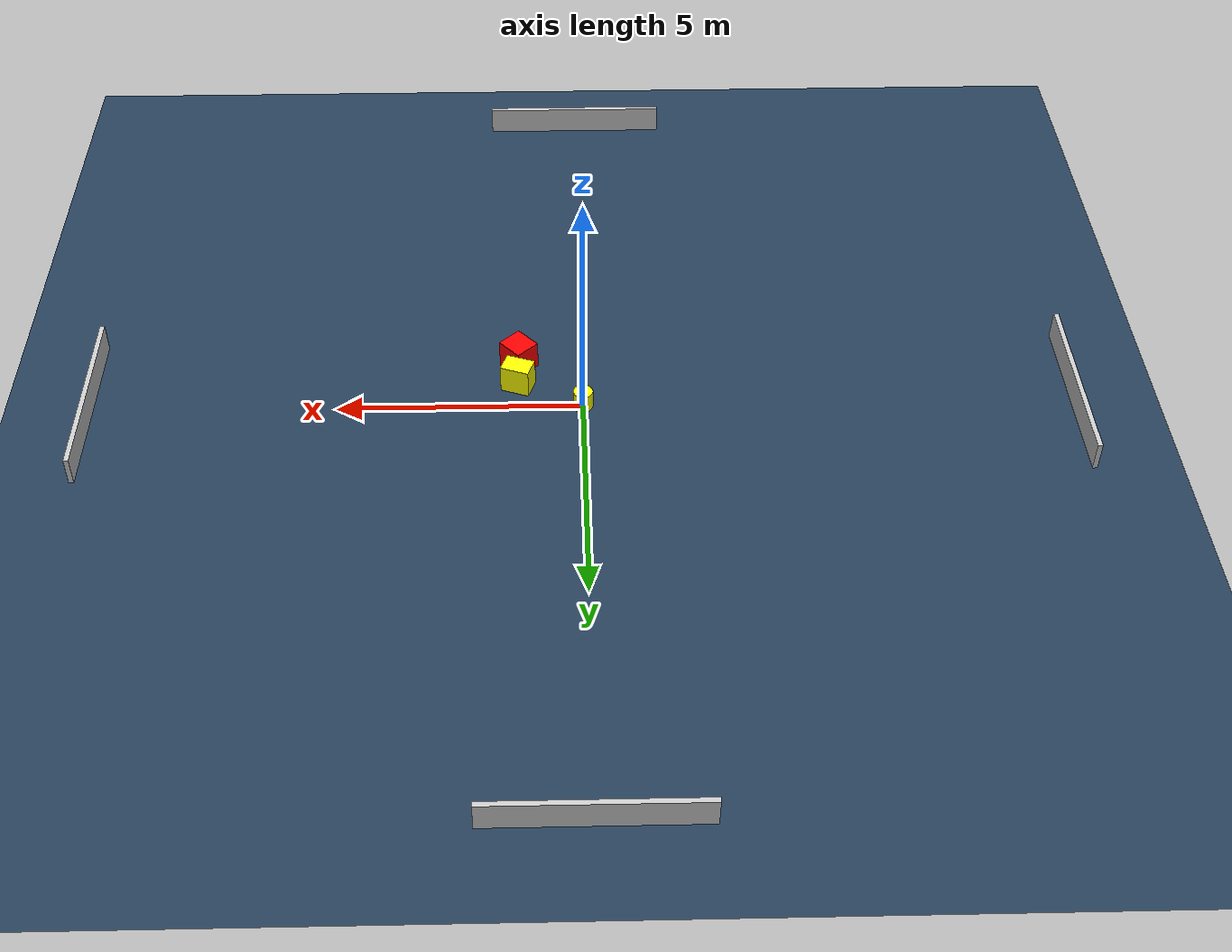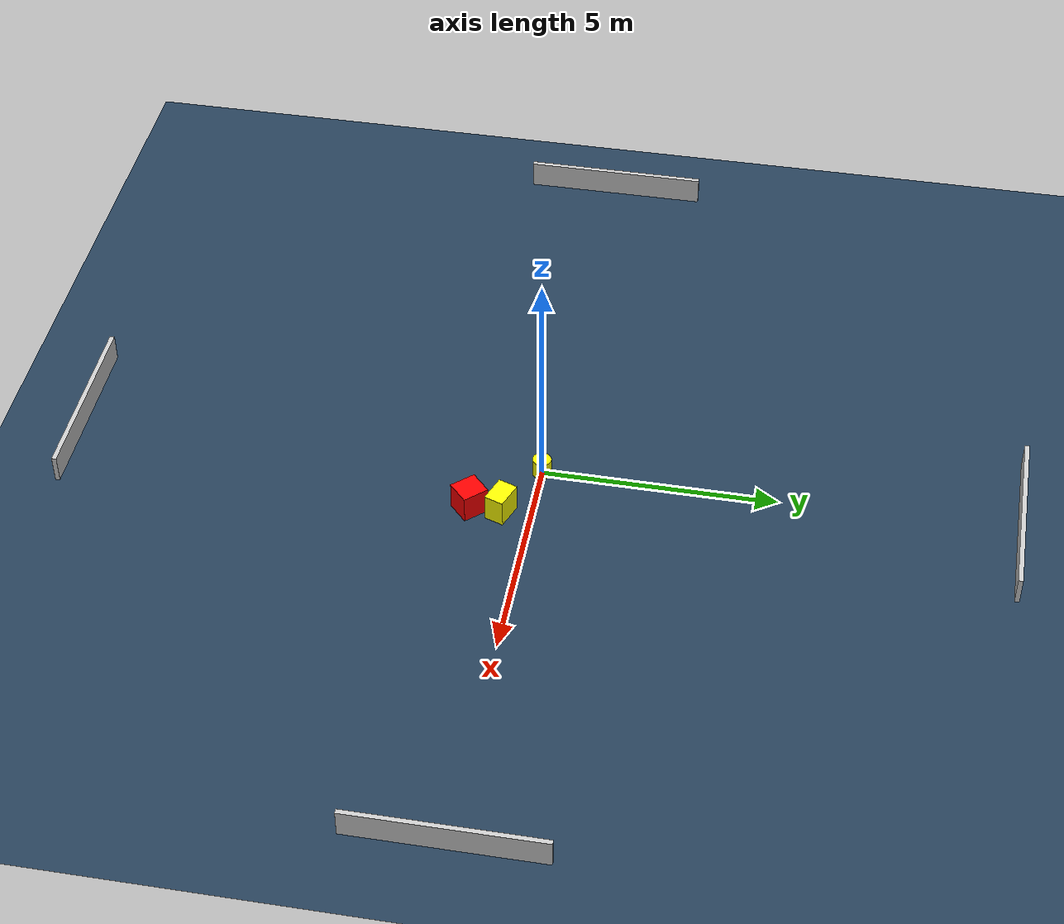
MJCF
<?xml version="1.0" ?>
<mujoco model="generated_environment">
  <option timestep="0.01" integrator="RK4" cone="elliptic"/>
  <default>
    <geom density="1"/>
  </default>
  <asset>
    <texture builtin="gradient" height="3072" name="skybox" rgb1="0.3 0.5 0.7" rgb2="0 0 0" type="skybox" width="512"/>
    <texture builtin="checker" height="300" name="groundplane" rgb1="0.2 0.3 0.4" rgb2="0.1 0.2 0.3" type="2d" width="300"/>
    <material name="groundplane" reflectance="0.2" texrepeat="5 5" texture="groundplane"/>
  </asset>
  <worldbody>
    <light dir="0 0 -1" directional="true" pos="0 0 1.5"/>
    <geom condim="3" friction="0.5 0.005 0.001" material="groundplane" name="floor" pos="0 0 0" size="0 0 0.05" type="plane"/>
    <body name="walls">
      <geom name="wall_1" condim="4" pos="-10.0 0.0 0.3" rgba="0.800000011920929 0.800000011920929 0.800000011920929 1.0" size="0.05 2.0 0.3" type="box"/>
      <geom name="wall_2" condim="4" pos="10.0 0.0 0.3" rgba="0.800000011920929 0.800000011920929 0.800000011920929 1.0" size="0.05 2.0 0.3" type="box"/>
      <geom name="wall_3" condim="4" pos="0.0 -10.0 0.3" rgba="0.800000011920929 0.800000011920929 0.800000011920929 1.0" size="2.0 0.05 0.3" type="box"/>
      <geom name="wall_4" condim="4" pos="0.0 10.0 0.3" rgba="0.800000011920929 0.800000011920929 0.800000011920929 1.0" size="2.0 0.05 0.3" type="box"/>
    </body>
    <body name="robot">
      <joint name="joint_x" type="slide" pos="0 0 0" axis="1 0 0"/>
      <joint name="joint_y" type="slide" pos="0 0 0" axis="0 1 0"/>
      <geom name="robot" type="cylinder" pos="0.0 0.0 0.2" size="0.2 0.2 0.0" mass="5.0" friction="1.0 0.005 0.0001" condim="4" rgba="1.0 1.0 0.0 1.0"/>
    </body>
    <body name="obstacle_1_movable">
      <geom name="obstacle_1_movable" condim="4" pos="1.325785851934755 -0.6217151226806648 0.3" euler="0 0 160.07402699279208" friction="0.0 0.005 0.001" rgba="1.0 1.0 0.0 1.0" size="0.29961166811748585 0.21233302079157773 0.3" type="box" mass="0.1"/>
      <joint type="free"/>
    </body>
    <body name="obstacle_2_static">
      <geom name="obstacle_2_static" condim="4" pos="1.3104670047372386 -1.2905156575965444 0.3" euler="0 0 132.81547313173084" friction="0.0 0.005 0.001" rgba="1.0 0.0 0.0 1.0" size="0.28738775921359094 0.2717748399528829 0.3" type="box"/>
    </body>
  </worldbody>
  <actuator>
    <motor name="actuator_x" joint="joint_x" gear="1" ctrlrange="-1 1"/>
    <motor name="actuator_y" joint="joint_y" gear="1" ctrlrange="-1 1"/>
  </actuator>
</mujoco>
